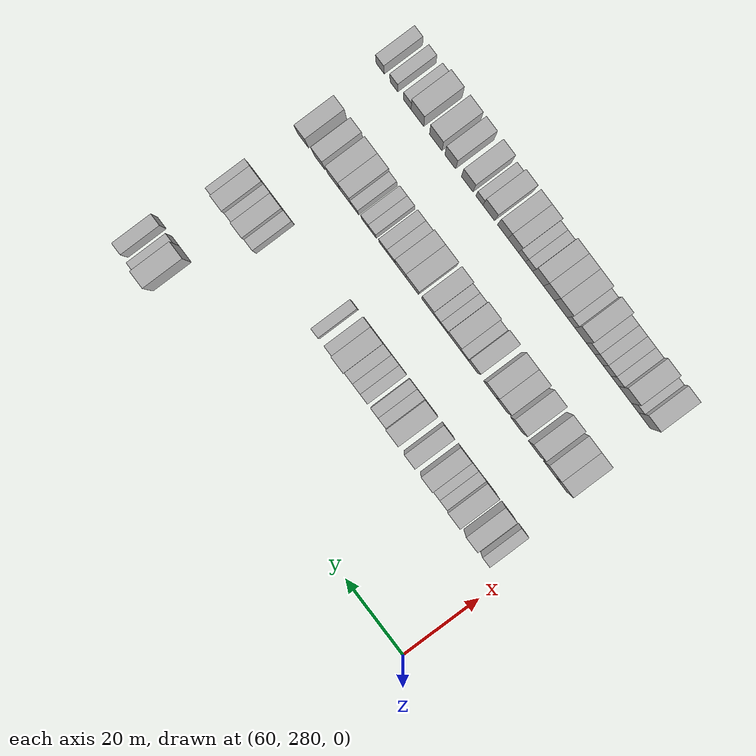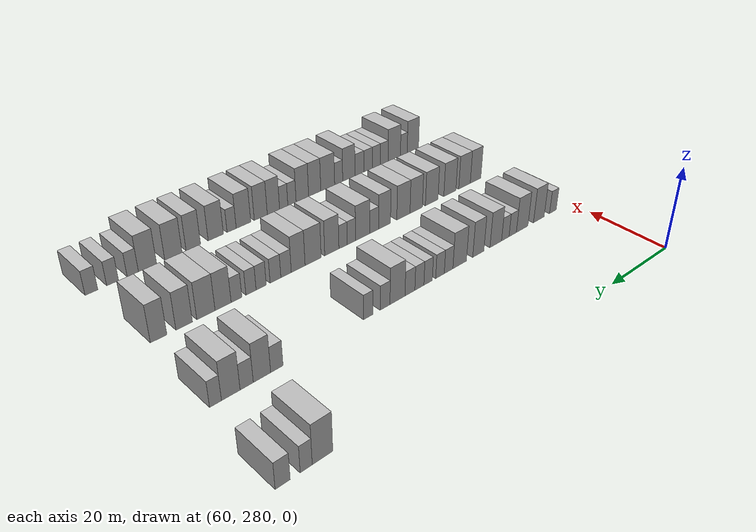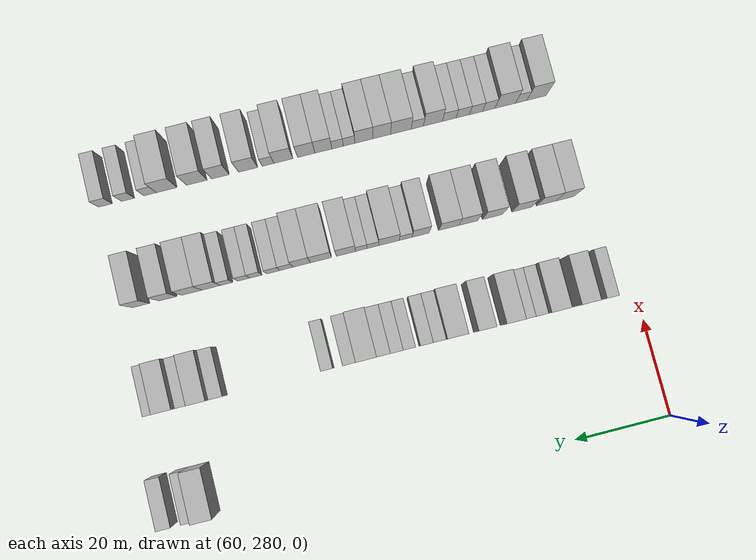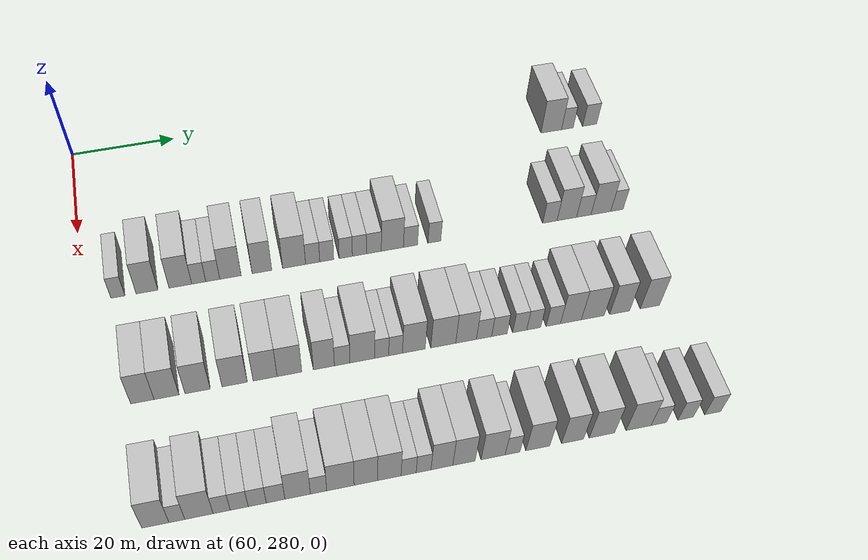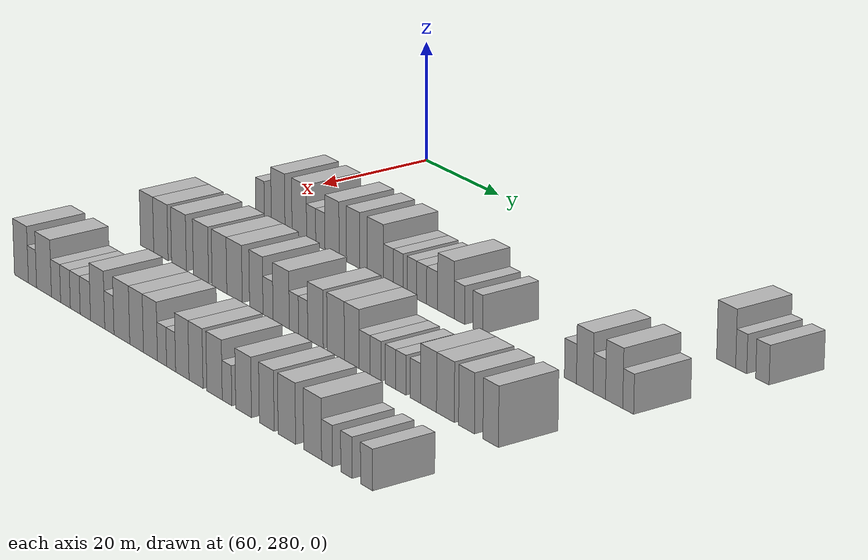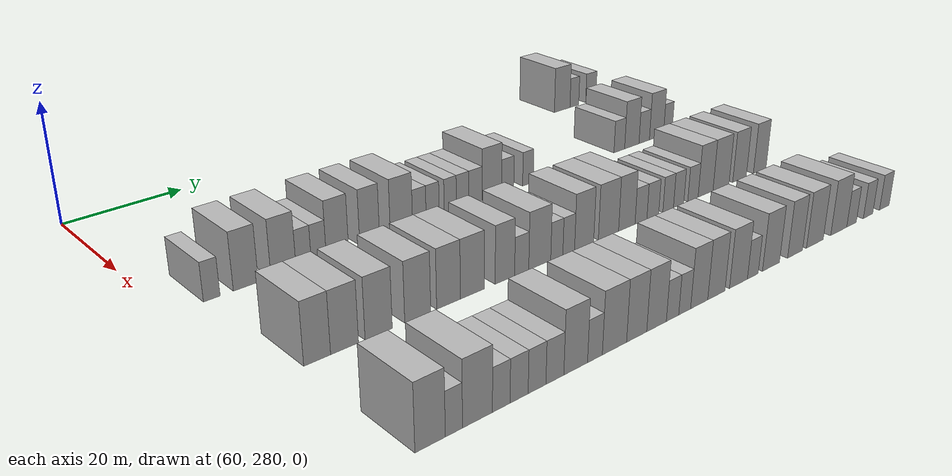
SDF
<sdf version="1.6">
 <world name="default">
  <model name="building_575">
   <static>1</static>
   <pose>69.0000 374.6277 0 0.000000 0.000000 0.000000</pose>
   <link name="link">
    <pose>0 0 4.50 0 0 0</pose>
    <collision name="collision"><geometry><box><size>10.0000 4.3175 9.0000</size></box></geometry></collision>
    <visual name="visual">
     <cast_shadows>0</cast_shadows>
     <geometry><box><size>10.0000 4.3175 9.0000</size></box></geometry>
     <material>
      <script>
       <uri>model://HANNAS_wall/materials/scripts</uri>
       <uri>model://HANNAS_wall/materials/textures</uri>
       <name>vrc/HANNAS_wall</name>
      </script>
     </material>
    </visual>
   </link>
  </model>
  <model name="building_576">
   <static>1</static>
   <pose>69.0000 378.0241 0 0.000000 0.000000 0.000000</pose>
   <link name="link">
    <pose>0 0 3.00 0 0 0</pose>
    <collision name="collision"><geometry><box><size>10.0000 2.4751 6.0000</size></box></geometry></collision>
    <visual name="visual">
     <cast_shadows>0</cast_shadows>
     <geometry><box><size>10.0000 2.4751 6.0000</size></box></geometry>
     <material>
      <script>
       <uri>model://HANNAS_wall/materials/scripts</uri>
       <uri>model://HANNAS_wall/materials/textures</uri>
       <name>vrc/HANNAS_wall</name>
      </script>
     </material>
    </visual>
   </link>
  </model>
  <model name="building_577">
   <static>1</static>
   <pose>69.0000 382.7484 0 0.000000 0.000000 0.000000</pose>
   <link name="link">
    <pose>0 0 3.00 0 0 0</pose>
    <collision name="collision"><geometry><box><size>10.0000 2.9735 6.0000</size></box></geometry></collision>
    <visual name="visual">
     <cast_shadows>0</cast_shadows>
     <geometry><box><size>10.0000 2.9735 6.0000</size></box></geometry>
     <material>
      <script>
       <uri>model://HANNAS_wall/materials/scripts</uri>
       <uri>model://HANNAS_wall/materials/textures</uri>
       <name>vrc/HANNAS_wall</name>
      </script>
     </material>
    </visual>
   </link>
  </model>
  <model name="building_746">
   <static>1</static>
   <pose>91.0000 286.3686 0 0.000000 0.000000 0.000000</pose>
   <link name="link">
    <pose>0 0 3.00 0 0 0</pose>
    <collision name="collision"><geometry><box><size>10.0000 2.4962 6.0000</size></box></geometry></collision>
    <visual name="visual">
     <cast_shadows>0</cast_shadows>
     <geometry><box><size>10.0000 2.4962 6.0000</size></box></geometry>
     <material>
      <script>
       <uri>model://HANNAS_wall/materials/scripts</uri>
       <uri>model://HANNAS_wall/materials/textures</uri>
       <name>vrc/HANNAS_wall</name>
      </script>
     </material>
    </visual>
   </link>
  </model>
  <model name="building_747">
   <static>1</static>
   <pose>91.0000 291.5607 0 0.000000 0.000000 0.000000</pose>
   <link name="link">
    <pose>0 0 4.50 0 0 0</pose>
    <collision name="collision"><geometry><box><size>10.0000 3.8879 9.0000</size></box></geometry></collision>
    <visual name="visual">
     <cast_shadows>0</cast_shadows>
     <geometry><box><size>10.0000 3.8879 9.0000</size></box></geometry>
     <material>
      <script>
       <uri>model://HANNAS_wall/materials/scripts</uri>
       <uri>model://HANNAS_wall/materials/textures</uri>
       <name>vrc/HANNAS_wall</name>
      </script>
     </material>
    </visual>
   </link>
  </model>
  <model name="building_748">
   <static>1</static>
   <pose>91.0000 297.5501 0 0.000000 0.000000 0.000000</pose>
   <link name="link">
    <pose>0 0 4.50 0 0 0</pose>
    <collision name="collision"><geometry><box><size>10.0000 4.0910 9.0000</size></box></geometry></collision>
    <visual name="visual">
     <cast_shadows>0</cast_shadows>
     <geometry><box><size>10.0000 4.0910 9.0000</size></box></geometry>
     <material>
      <script>
       <uri>model://HANNAS_wall/materials/scripts</uri>
       <uri>model://HANNAS_wall/materials/textures</uri>
       <name>vrc/HANNAS_wall</name>
      </script>
     </material>
    </visual>
   </link>
  </model>
  <model name="building_749">
   <static>1</static>
   <pose>91.0000 300.8704 0 0.000000 0.000000 0.000000</pose>
   <link name="link">
    <pose>0 0 3.00 0 0 0</pose>
    <collision name="collision"><geometry><box><size>10.0000 2.5496 6.0000</size></box></geometry></collision>
    <visual name="visual">
     <cast_shadows>0</cast_shadows>
     <geometry><box><size>10.0000 2.5496 6.0000</size></box></geometry>
     <material>
      <script>
       <uri>model://HANNAS_wall/materials/scripts</uri>
       <uri>model://HANNAS_wall/materials/textures</uri>
       <name>vrc/HANNAS_wall</name>
      </script>
     </material>
    </visual>
   </link>
  </model>
  <model name="building_750">
   <static>1</static>
   <pose>91.0000 303.4204 0 0.000000 0.000000 0.000000</pose>
   <link name="link">
    <pose>0 0 3.00 0 0 0</pose>
    <collision name="collision"><geometry><box><size>10.0000 2.5504 6.0000</size></box></geometry></collision>
    <visual name="visual">
     <cast_shadows>0</cast_shadows>
     <geometry><box><size>10.0000 2.5504 6.0000</size></box></geometry>
     <material>
      <script>
       <uri>model://HANNAS_wall/materials/scripts</uri>
       <uri>model://HANNAS_wall/materials/textures</uri>
       <name>vrc/HANNAS_wall</name>
      </script>
     </material>
    </visual>
   </link>
  </model>
  <model name="building_751">
   <static>1</static>
   <pose>91.0000 306.6442 0 0.000000 0.000000 0.000000</pose>
   <link name="link">
    <pose>0 0 4.50 0 0 0</pose>
    <collision name="collision"><geometry><box><size>10.0000 3.8972 9.0000</size></box></geometry></collision>
    <visual name="visual">
     <cast_shadows>0</cast_shadows>
     <geometry><box><size>10.0000 3.8972 9.0000</size></box></geometry>
     <material>
      <script>
       <uri>model://HANNAS_wall/materials/scripts</uri>
       <uri>model://HANNAS_wall/materials/textures</uri>
       <name>vrc/HANNAS_wall</name>
      </script>
     </material>
    </visual>
   </link>
  </model>
  <model name="building_752">
   <static>1</static>
   <pose>91.0000 312.3993 0 0.000000 0.000000 0.000000</pose>
   <link name="link">
    <pose>0 0 4.50 0 0 0</pose>
    <collision name="collision"><geometry><box><size>10.0000 3.6131 9.0000</size></box></geometry></collision>
    <visual name="visual">
     <cast_shadows>0</cast_shadows>
     <geometry><box><size>10.0000 3.6131 9.0000</size></box></geometry>
     <material>
      <script>
       <uri>model://HANNAS_wall/materials/scripts</uri>
       <uri>model://HANNAS_wall/materials/textures</uri>
       <name>vrc/HANNAS_wall</name>
      </script>
     </material>
    </visual>
   </link>
  </model>
  <model name="building_753">
   <static>1</static>
   <pose>91.0000 318.3314 0 0.000000 0.000000 0.000000</pose>
   <link name="link">
    <pose>0 0 4.50 0 0 0</pose>
    <collision name="collision"><geometry><box><size>10.0000 4.2511 9.0000</size></box></geometry></collision>
    <visual name="visual">
     <cast_shadows>0</cast_shadows>
     <geometry><box><size>10.0000 4.2511 9.0000</size></box></geometry>
     <material>
      <script>
       <uri>model://HANNAS_wall/materials/scripts</uri>
       <uri>model://HANNAS_wall/materials/textures</uri>
       <name>vrc/HANNAS_wall</name>
      </script>
     </material>
    </visual>
   </link>
  </model>
  <model name="building_754">
   <static>1</static>
   <pose>91.0000 321.7804 0 0.000000 0.000000 0.000000</pose>
   <link name="link">
    <pose>0 0 3.00 0 0 0</pose>
    <collision name="collision"><geometry><box><size>10.0000 2.6468 6.0000</size></box></geometry></collision>
    <visual name="visual">
     <cast_shadows>0</cast_shadows>
     <geometry><box><size>10.0000 2.6468 6.0000</size></box></geometry>
     <material>
      <script>
       <uri>model://HANNAS_wall/materials/scripts</uri>
       <uri>model://HANNAS_wall/materials/textures</uri>
       <name>vrc/HANNAS_wall</name>
      </script>
     </material>
    </visual>
   </link>
  </model>
  <model name="building_755">
   <static>1</static>
   <pose>91.0000 324.4025 0 0.000000 0.000000 0.000000</pose>
   <link name="link">
    <pose>0 0 3.00 0 0 0</pose>
    <collision name="collision"><geometry><box><size>10.0000 2.5975 6.0000</size></box></geometry></collision>
    <visual name="visual">
     <cast_shadows>0</cast_shadows>
     <geometry><box><size>10.0000 2.5975 6.0000</size></box></geometry>
     <material>
      <script>
       <uri>model://HANNAS_wall/materials/scripts</uri>
       <uri>model://HANNAS_wall/materials/textures</uri>
       <name>vrc/HANNAS_wall</name>
      </script>
     </material>
    </visual>
   </link>
  </model>
  <model name="building_756">
   <static>1</static>
   <pose>91.0000 327.9471 0 0.000000 0.000000 0.000000</pose>
   <link name="link">
    <pose>0 0 3.00 0 0 0</pose>
    <collision name="collision"><geometry><box><size>10.0000 2.4917 6.0000</size></box></geometry></collision>
    <visual name="visual">
     <cast_shadows>0</cast_shadows>
     <geometry><box><size>10.0000 2.4917 6.0000</size></box></geometry>
     <material>
      <script>
       <uri>model://HANNAS_wall/materials/scripts</uri>
       <uri>model://HANNAS_wall/materials/textures</uri>
       <name>vrc/HANNAS_wall</name>
      </script>
     </material>
    </visual>
   </link>
  </model>
  <model name="building_757">
   <static>1</static>
   <pose>91.0000 330.5033 0 0.000000 0.000000 0.000000</pose>
   <link name="link">
    <pose>0 0 3.00 0 0 0</pose>
    <collision name="collision"><geometry><box><size>10.0000 2.6206 6.0000</size></box></geometry></collision>
    <visual name="visual">
     <cast_shadows>0</cast_shadows>
     <geometry><box><size>10.0000 2.6206 6.0000</size></box></geometry>
     <material>
      <script>
       <uri>model://HANNAS_wall/materials/scripts</uri>
       <uri>model://HANNAS_wall/materials/textures</uri>
       <name>vrc/HANNAS_wall</name>
      </script>
     </material>
    </visual>
   </link>
  </model>
  <model name="building_758">
   <static>1</static>
   <pose>91.0000 333.2234 0 0.000000 0.000000 0.000000</pose>
   <link name="link">
    <pose>0 0 3.00 0 0 0</pose>
    <collision name="collision"><geometry><box><size>10.0000 2.8196 6.0000</size></box></geometry></collision>
    <visual name="visual">
     <cast_shadows>0</cast_shadows>
     <geometry><box><size>10.0000 2.8196 6.0000</size></box></geometry>
     <material>
      <script>
       <uri>model://HANNAS_wall/materials/scripts</uri>
       <uri>model://HANNAS_wall/materials/textures</uri>
       <name>vrc/HANNAS_wall</name>
      </script>
     </material>
    </visual>
   </link>
  </model>
  <model name="building_759">
   <static>1</static>
   <pose>91.0000 336.7365 0 0.000000 0.000000 0.000000</pose>
   <link name="link">
    <pose>0 0 4.50 0 0 0</pose>
    <collision name="collision"><geometry><box><size>10.0000 4.2067 9.0000</size></box></geometry></collision>
    <visual name="visual">
     <cast_shadows>0</cast_shadows>
     <geometry><box><size>10.0000 4.2067 9.0000</size></box></geometry>
     <material>
      <script>
       <uri>model://HANNAS_wall/materials/scripts</uri>
       <uri>model://HANNAS_wall/materials/textures</uri>
       <name>vrc/HANNAS_wall</name>
      </script>
     </material>
    </visual>
   </link>
  </model>
  <model name="building_760">
   <static>1</static>
   <pose>91.0000 340.1755 0 0.000000 0.000000 0.000000</pose>
   <link name="link">
    <pose>0 0 3.00 0 0 0</pose>
    <collision name="collision"><geometry><box><size>10.0000 2.6713 6.0000</size></box></geometry></collision>
    <visual name="visual">
     <cast_shadows>0</cast_shadows>
     <geometry><box><size>10.0000 2.6713 6.0000</size></box></geometry>
     <material>
      <script>
       <uri>model://HANNAS_wall/materials/scripts</uri>
       <uri>model://HANNAS_wall/materials/textures</uri>
       <name>vrc/HANNAS_wall</name>
      </script>
     </material>
    </visual>
   </link>
  </model>
  <model name="building_761">
   <static>1</static>
   <pose>91.0000 344.7371 0 0.000000 0.000000 0.000000</pose>
   <link name="link">
    <pose>0 0 3.00 0 0 0</pose>
    <collision name="collision"><geometry><box><size>10.0000 2.4519 6.0000</size></box></geometry></collision>
    <visual name="visual">
     <cast_shadows>0</cast_shadows>
     <geometry><box><size>10.0000 2.4519 6.0000</size></box></geometry>
     <material>
      <script>
       <uri>model://HANNAS_wall/materials/scripts</uri>
       <uri>model://HANNAS_wall/materials/textures</uri>
       <name>vrc/HANNAS_wall</name>
      </script>
     </material>
    </visual>
   </link>
  </model>
  <model name="building_762">
   <static>1</static>
   <pose>91.0000 367.1965 0 0.000000 0.000000 0.000000</pose>
   <link name="link">
    <pose>0 0 3.00 0 0 0</pose>
    <collision name="collision"><geometry><box><size>10.0000 2.8223 6.0000</size></box></geometry></collision>
    <visual name="visual">
     <cast_shadows>0</cast_shadows>
     <geometry><box><size>10.0000 2.8223 6.0000</size></box></geometry>
     <material>
      <script>
       <uri>model://HANNAS_wall/materials/scripts</uri>
       <uri>model://HANNAS_wall/materials/textures</uri>
       <name>vrc/HANNAS_wall</name>
      </script>
     </material>
    </visual>
   </link>
  </model>
  <model name="building_763">
   <static>1</static>
   <pose>91.0000 370.5399 0 0.000000 0.000000 0.000000</pose>
   <link name="link">
    <pose>0 0 4.50 0 0 0</pose>
    <collision name="collision"><geometry><box><size>10.0000 3.8645 9.0000</size></box></geometry></collision>
    <visual name="visual">
     <cast_shadows>0</cast_shadows>
     <geometry><box><size>10.0000 3.8645 9.0000</size></box></geometry>
     <material>
      <script>
       <uri>model://HANNAS_wall/materials/scripts</uri>
       <uri>model://HANNAS_wall/materials/textures</uri>
       <name>vrc/HANNAS_wall</name>
      </script>
     </material>
    </visual>
   </link>
  </model>
  <model name="building_764">
   <static>1</static>
   <pose>91.0000 373.9079 0 0.000000 0.000000 0.000000</pose>
   <link name="link">
    <pose>0 0 3.00 0 0 0</pose>
    <collision name="collision"><geometry><box><size>10.0000 2.8715 6.0000</size></box></geometry></collision>
    <visual name="visual">
     <cast_shadows>0</cast_shadows>
     <geometry><box><size>10.0000 2.8715 6.0000</size></box></geometry>
     <material>
      <script>
       <uri>model://HANNAS_wall/materials/scripts</uri>
       <uri>model://HANNAS_wall/materials/textures</uri>
       <name>vrc/HANNAS_wall</name>
      </script>
     </material>
    </visual>
   </link>
  </model>
  <model name="building_765">
   <static>1</static>
   <pose>91.0000 377.3191 0 0.000000 0.000000 0.000000</pose>
   <link name="link">
    <pose>0 0 4.50 0 0 0</pose>
    <collision name="collision"><geometry><box><size>10.0000 3.9510 9.0000</size></box></geometry></collision>
    <visual name="visual">
     <cast_shadows>0</cast_shadows>
     <geometry><box><size>10.0000 3.9510 9.0000</size></box></geometry>
     <material>
      <script>
       <uri>model://HANNAS_wall/materials/scripts</uri>
       <uri>model://HANNAS_wall/materials/textures</uri>
       <name>vrc/HANNAS_wall</name>
      </script>
     </material>
    </visual>
   </link>
  </model>
  <model name="building_766">
   <static>1</static>
   <pose>91.0000 380.5369 0 0.000000 0.000000 0.000000</pose>
   <link name="link">
    <pose>0 0 3.00 0 0 0</pose>
    <collision name="collision"><geometry><box><size>10.0000 2.4845 6.0000</size></box></geometry></collision>
    <visual name="visual">
     <cast_shadows>0</cast_shadows>
     <geometry><box><size>10.0000 2.4845 6.0000</size></box></geometry>
     <material>
      <script>
       <uri>model://HANNAS_wall/materials/scripts</uri>
       <uri>model://HANNAS_wall/materials/textures</uri>
       <name>vrc/HANNAS_wall</name>
      </script>
     </material>
    </visual>
   </link>
  </model>
  <model name="building_931">
   <static>1</static>
   <pose>113.0000 288.8568 0 0.000000 0.000000 0.000000</pose>
   <link name="link">
    <pose>0 0 4.50 0 0 0</pose>
    <collision name="collision"><geometry><box><size>10.0000 3.8878 9.0000</size></box></geometry></collision>
    <visual name="visual">
     <cast_shadows>0</cast_shadows>
     <geometry><box><size>10.0000 3.8878 9.0000</size></box></geometry>
     <material>
      <script>
       <uri>model://HANNAS_wall/materials/scripts</uri>
       <uri>model://HANNAS_wall/materials/textures</uri>
       <name>vrc/HANNAS_wall</name>
      </script>
     </material>
    </visual>
   </link>
  </model>
  <model name="building_932">
   <static>1</static>
   <pose>113.0000 292.8882 0 0.000000 0.000000 0.000000</pose>
   <link name="link">
    <pose>0 0 4.50 0 0 0</pose>
    <collision name="collision"><geometry><box><size>10.0000 4.1750 9.0000</size></box></geometry></collision>
    <visual name="visual">
     <cast_shadows>0</cast_shadows>
     <geometry><box><size>10.0000 4.1750 9.0000</size></box></geometry>
     <material>
      <script>
       <uri>model://HANNAS_wall/materials/scripts</uri>
       <uri>model://HANNAS_wall/materials/textures</uri>
       <name>vrc/HANNAS_wall</name>
      </script>
     </material>
    </visual>
   </link>
  </model>
  <model name="building_933">
   <static>1</static>
   <pose>113.0000 298.1080 0 0.000000 0.000000 0.000000</pose>
   <link name="link">
    <pose>0 0 4.50 0 0 0</pose>
    <collision name="collision"><geometry><box><size>10.0000 4.2646 9.0000</size></box></geometry></collision>
    <visual name="visual">
     <cast_shadows>0</cast_shadows>
     <geometry><box><size>10.0000 4.2646 9.0000</size></box></geometry>
     <material>
      <script>
       <uri>model://HANNAS_wall/materials/scripts</uri>
       <uri>model://HANNAS_wall/materials/textures</uri>
       <name>vrc/HANNAS_wall</name>
      </script>
     </material>
    </visual>
   </link>
  </model>
  <model name="building_934">
   <static>1</static>
   <pose>113.0000 304.3857 0 0.000000 0.000000 0.000000</pose>
   <link name="link">
    <pose>0 0 4.50 0 0 0</pose>
    <collision name="collision"><geometry><box><size>10.0000 4.2909 9.0000</size></box></geometry></collision>
    <visual name="visual">
     <cast_shadows>0</cast_shadows>
     <geometry><box><size>10.0000 4.2909 9.0000</size></box></geometry>
     <material>
      <script>
       <uri>model://HANNAS_wall/materials/scripts</uri>
       <uri>model://HANNAS_wall/materials/textures</uri>
       <name>vrc/HANNAS_wall</name>
      </script>
     </material>
    </visual>
   </link>
  </model>
  <model name="building_935">
   <static>1</static>
   <pose>113.0000 309.5827 0 0.000000 0.000000 0.000000</pose>
   <link name="link">
    <pose>0 0 4.50 0 0 0</pose>
    <collision name="collision"><geometry><box><size>10.0000 4.1031 9.0000</size></box></geometry></collision>
    <visual name="visual">
     <cast_shadows>0</cast_shadows>
     <geometry><box><size>10.0000 4.1031 9.0000</size></box></geometry>
     <material>
      <script>
       <uri>model://HANNAS_wall/materials/scripts</uri>
       <uri>model://HANNAS_wall/materials/textures</uri>
       <name>vrc/HANNAS_wall</name>
      </script>
     </material>
    </visual>
   </link>
  </model>
  <model name="building_936">
   <static>1</static>
   <pose>113.0000 313.7632 0 0.000000 0.000000 0.000000</pose>
   <link name="link">
    <pose>0 0 4.50 0 0 0</pose>
    <collision name="collision"><geometry><box><size>10.0000 4.2581 9.0000</size></box></geometry></collision>
    <visual name="visual">
     <cast_shadows>0</cast_shadows>
     <geometry><box><size>10.0000 4.2581 9.0000</size></box></geometry>
     <material>
      <script>
       <uri>model://HANNAS_wall/materials/scripts</uri>
       <uri>model://HANNAS_wall/materials/textures</uri>
       <name>vrc/HANNAS_wall</name>
      </script>
     </material>
    </visual>
   </link>
  </model>
  <model name="building_937">
   <static>1</static>
   <pose>113.0000 319.7198 0 0.000000 0.000000 0.000000</pose>
   <link name="link">
    <pose>0 0 4.50 0 0 0</pose>
    <collision name="collision"><geometry><box><size>10.0000 3.6551 9.0000</size></box></geometry></collision>
    <visual name="visual">
     <cast_shadows>0</cast_shadows>
     <geometry><box><size>10.0000 3.6551 9.0000</size></box></geometry>
     <material>
      <script>
       <uri>model://HANNAS_wall/materials/scripts</uri>
       <uri>model://HANNAS_wall/materials/textures</uri>
       <name>vrc/HANNAS_wall</name>
      </script>
     </material>
    </visual>
   </link>
  </model>
  <model name="building_938">
   <static>1</static>
   <pose>113.0000 322.9020 0 0.000000 0.000000 0.000000</pose>
   <link name="link">
    <pose>0 0 3.00 0 0 0</pose>
    <collision name="collision"><geometry><box><size>10.0000 2.7092 6.0000</size></box></geometry></collision>
    <visual name="visual">
     <cast_shadows>0</cast_shadows>
     <geometry><box><size>10.0000 2.7092 6.0000</size></box></geometry>
     <material>
      <script>
       <uri>model://HANNAS_wall/materials/scripts</uri>
       <uri>model://HANNAS_wall/materials/textures</uri>
       <name>vrc/HANNAS_wall</name>
      </script>
     </material>
    </visual>
   </link>
  </model>
  <model name="building_939">
   <static>1</static>
   <pose>113.0000 326.4269 0 0.000000 0.000000 0.000000</pose>
   <link name="link">
    <pose>0 0 4.50 0 0 0</pose>
    <collision name="collision"><geometry><box><size>10.0000 4.3405 9.0000</size></box></geometry></collision>
    <visual name="visual">
     <cast_shadows>0</cast_shadows>
     <geometry><box><size>10.0000 4.3405 9.0000</size></box></geometry>
     <material>
      <script>
       <uri>model://HANNAS_wall/materials/scripts</uri>
       <uri>model://HANNAS_wall/materials/textures</uri>
       <name>vrc/HANNAS_wall</name>
      </script>
     </material>
    </visual>
   </link>
  </model>
  <model name="building_940">
   <static>1</static>
   <pose>113.0000 329.8248 0 0.000000 0.000000 0.000000</pose>
   <link name="link">
    <pose>0 0 3.00 0 0 0</pose>
    <collision name="collision"><geometry><box><size>10.0000 2.4552 6.0000</size></box></geometry></collision>
    <visual name="visual">
     <cast_shadows>0</cast_shadows>
     <geometry><box><size>10.0000 2.4552 6.0000</size></box></geometry>
     <material>
      <script>
       <uri>model://HANNAS_wall/materials/scripts</uri>
       <uri>model://HANNAS_wall/materials/textures</uri>
       <name>vrc/HANNAS_wall</name>
      </script>
     </material>
    </visual>
   </link>
  </model>
  <model name="building_941">
   <static>1</static>
   <pose>113.0000 332.2641 0 0.000000 0.000000 0.000000</pose>
   <link name="link">
    <pose>0 0 3.00 0 0 0</pose>
    <collision name="collision"><geometry><box><size>10.0000 2.4234 6.0000</size></box></geometry></collision>
    <visual name="visual">
     <cast_shadows>0</cast_shadows>
     <geometry><box><size>10.0000 2.4234 6.0000</size></box></geometry>
     <material>
      <script>
       <uri>model://HANNAS_wall/materials/scripts</uri>
       <uri>model://HANNAS_wall/materials/textures</uri>
       <name>vrc/HANNAS_wall</name>
      </script>
     </material>
    </visual>
   </link>
  </model>
  <model name="building_942">
   <static>1</static>
   <pose>113.0000 335.4983 0 0.000000 0.000000 0.000000</pose>
   <link name="link">
    <pose>0 0 4.50 0 0 0</pose>
    <collision name="collision"><geometry><box><size>10.0000 4.0451 9.0000</size></box></geometry></collision>
    <visual name="visual">
     <cast_shadows>0</cast_shadows>
     <geometry><box><size>10.0000 4.0451 9.0000</size></box></geometry>
     <material>
      <script>
       <uri>model://HANNAS_wall/materials/scripts</uri>
       <uri>model://HANNAS_wall/materials/textures</uri>
       <name>vrc/HANNAS_wall</name>
      </script>
     </material>
    </visual>
   </link>
  </model>
  <model name="building_943">
   <static>1</static>
   <pose>113.0000 340.7490 0 0.000000 0.000000 0.000000</pose>
   <link name="link">
    <pose>0 0 4.50 0 0 0</pose>
    <collision name="collision"><geometry><box><size>10.0000 4.4563 9.0000</size></box></geometry></collision>
    <visual name="visual">
     <cast_shadows>0</cast_shadows>
     <geometry><box><size>10.0000 4.4563 9.0000</size></box></geometry>
     <material>
      <script>
       <uri>model://HANNAS_wall/materials/scripts</uri>
       <uri>model://HANNAS_wall/materials/textures</uri>
       <name>vrc/HANNAS_wall</name>
      </script>
     </material>
    </visual>
   </link>
  </model>
  <model name="building_944">
   <static>1</static>
   <pose>113.0000 344.8410 0 0.000000 0.000000 0.000000</pose>
   <link name="link">
    <pose>0 0 4.50 0 0 0</pose>
    <collision name="collision"><geometry><box><size>10.0000 3.7277 9.0000</size></box></geometry></collision>
    <visual name="visual">
     <cast_shadows>0</cast_shadows>
     <geometry><box><size>10.0000 3.7277 9.0000</size></box></geometry>
     <material>
      <script>
       <uri>model://HANNAS_wall/materials/scripts</uri>
       <uri>model://HANNAS_wall/materials/textures</uri>
       <name>vrc/HANNAS_wall</name>
      </script>
     </material>
    </visual>
   </link>
  </model>
  <model name="building_945">
   <static>1</static>
   <pose>113.0000 348.0830 0 0.000000 0.000000 0.000000</pose>
   <link name="link">
    <pose>0 0 3.00 0 0 0</pose>
    <collision name="collision"><geometry><box><size>10.0000 2.7561 6.0000</size></box></geometry></collision>
    <visual name="visual">
     <cast_shadows>0</cast_shadows>
     <geometry><box><size>10.0000 2.7561 6.0000</size></box></geometry>
     <material>
      <script>
       <uri>model://HANNAS_wall/materials/scripts</uri>
       <uri>model://HANNAS_wall/materials/textures</uri>
       <name>vrc/HANNAS_wall</name>
      </script>
     </material>
    </visual>
   </link>
  </model>
  <model name="building_946">
   <static>1</static>
   <pose>113.0000 350.8600 0 0.000000 0.000000 0.000000</pose>
   <link name="link">
    <pose>0 0 3.00 0 0 0</pose>
    <collision name="collision"><geometry><box><size>10.0000 2.7979 6.0000</size></box></geometry></collision>
    <visual name="visual">
     <cast_shadows>0</cast_shadows>
     <geometry><box><size>10.0000 2.7979 6.0000</size></box></geometry>
     <material>
      <script>
       <uri>model://HANNAS_wall/materials/scripts</uri>
       <uri>model://HANNAS_wall/materials/textures</uri>
       <name>vrc/HANNAS_wall</name>
      </script>
     </material>
    </visual>
   </link>
  </model>
  <model name="building_947">
   <static>1</static>
   <pose>113.0000 354.5450 0 0.000000 0.000000 0.000000</pose>
   <link name="link">
    <pose>0 0 3.00 0 0 0</pose>
    <collision name="collision"><geometry><box><size>10.0000 2.5722 6.0000</size></box></geometry></collision>
    <visual name="visual">
     <cast_shadows>0</cast_shadows>
     <geometry><box><size>10.0000 2.5722 6.0000</size></box></geometry>
     <material>
      <script>
       <uri>model://HANNAS_wall/materials/scripts</uri>
       <uri>model://HANNAS_wall/materials/textures</uri>
       <name>vrc/HANNAS_wall</name>
      </script>
     </material>
    </visual>
   </link>
  </model>
  <model name="building_948">
   <static>1</static>
   <pose>113.0000 357.1056 0 0.000000 0.000000 0.000000</pose>
   <link name="link">
    <pose>0 0 3.00 0 0 0</pose>
    <collision name="collision"><geometry><box><size>10.0000 2.5491 6.0000</size></box></geometry></collision>
    <visual name="visual">
     <cast_shadows>0</cast_shadows>
     <geometry><box><size>10.0000 2.5491 6.0000</size></box></geometry>
     <material>
      <script>
       <uri>model://HANNAS_wall/materials/scripts</uri>
       <uri>model://HANNAS_wall/materials/textures</uri>
       <name>vrc/HANNAS_wall</name>
      </script>
     </material>
    </visual>
   </link>
  </model>
  <model name="building_949">
   <static>1</static>
   <pose>113.0000 360.6949 0 0.000000 0.000000 0.000000</pose>
   <link name="link">
    <pose>0 0 3.00 0 0 0</pose>
    <collision name="collision"><geometry><box><size>10.0000 2.6295 6.0000</size></box></geometry></collision>
    <visual name="visual">
     <cast_shadows>0</cast_shadows>
     <geometry><box><size>10.0000 2.6295 6.0000</size></box></geometry>
     <material>
      <script>
       <uri>model://HANNAS_wall/materials/scripts</uri>
       <uri>model://HANNAS_wall/materials/textures</uri>
       <name>vrc/HANNAS_wall</name>
      </script>
     </material>
    </visual>
   </link>
  </model>
  <model name="building_950">
   <static>1</static>
   <pose>113.0000 363.9368 0 0.000000 0.000000 0.000000</pose>
   <link name="link">
    <pose>0 0 4.50 0 0 0</pose>
    <collision name="collision"><geometry><box><size>10.0000 3.8544 9.0000</size></box></geometry></collision>
    <visual name="visual">
     <cast_shadows>0</cast_shadows>
     <geometry><box><size>10.0000 3.8544 9.0000</size></box></geometry>
     <material>
      <script>
       <uri>model://HANNAS_wall/materials/scripts</uri>
       <uri>model://HANNAS_wall/materials/textures</uri>
       <name>vrc/HANNAS_wall</name>
      </script>
     </material>
    </visual>
   </link>
  </model>
  <model name="building_951">
   <static>1</static>
   <pose>113.0000 367.9996 0 0.000000 0.000000 0.000000</pose>
   <link name="link">
    <pose>0 0 4.50 0 0 0</pose>
    <collision name="collision"><geometry><box><size>10.0000 4.2711 9.0000</size></box></geometry></collision>
    <visual name="visual">
     <cast_shadows>0</cast_shadows>
     <geometry><box><size>10.0000 4.2711 9.0000</size></box></geometry>
     <material>
      <script>
       <uri>model://HANNAS_wall/materials/scripts</uri>
       <uri>model://HANNAS_wall/materials/textures</uri>
       <name>vrc/HANNAS_wall</name>
      </script>
     </material>
    </visual>
   </link>
  </model>
  <model name="building_952">
   <static>1</static>
   <pose>113.0000 373.0039 0 0.000000 0.000000 0.000000</pose>
   <link name="link">
    <pose>0 0 4.50 0 0 0</pose>
    <collision name="collision"><geometry><box><size>10.0000 3.7374 9.0000</size></box></geometry></collision>
    <visual name="visual">
     <cast_shadows>0</cast_shadows>
     <geometry><box><size>10.0000 3.7374 9.0000</size></box></geometry>
     <material>
      <script>
       <uri>model://HANNAS_wall/materials/scripts</uri>
       <uri>model://HANNAS_wall/materials/textures</uri>
       <name>vrc/HANNAS_wall</name>
      </script>
     </material>
    </visual>
   </link>
  </model>
  <model name="building_953">
   <static>1</static>
   <pose>113.0000 378.6743 0 0.000000 0.000000 0.000000</pose>
   <link name="link">
    <pose>0 0 4.50 0 0 0</pose>
    <collision name="collision"><geometry><box><size>10.0000 3.6034 9.0000</size></box></geometry></collision>
    <visual name="visual">
     <cast_shadows>0</cast_shadows>
     <geometry><box><size>10.0000 3.6034 9.0000</size></box></geometry>
     <material>
      <script>
       <uri>model://HANNAS_wall/materials/scripts</uri>
       <uri>model://HANNAS_wall/materials/textures</uri>
       <name>vrc/HANNAS_wall</name>
      </script>
     </material>
    </visual>
   </link>
  </model>
  <model name="building_1127">
   <static>1</static>
   <pose>135.0000 288.9985 0 0.000000 0.000000 0.000000</pose>
   <link name="link">
    <pose>0 0 4.50 0 0 0</pose>
    <collision name="collision"><geometry><box><size>10.0000 4.2005 9.0000</size></box></geometry></collision>
    <visual name="visual">
     <cast_shadows>0</cast_shadows>
     <geometry><box><size>10.0000 4.2005 9.0000</size></box></geometry>
     <material>
      <script>
       <uri>model://HANNAS_wall/materials/scripts</uri>
       <uri>model://HANNAS_wall/materials/textures</uri>
       <name>vrc/HANNAS_wall</name>
      </script>
     </material>
    </visual>
   </link>
  </model>
  <model name="building_1128">
   <static>1</static>
   <pose>135.0000 292.3242 0 0.000000 0.000000 0.000000</pose>
   <link name="link">
    <pose>0 0 3.00 0 0 0</pose>
    <collision name="collision"><geometry><box><size>10.0000 2.4510 6.0000</size></box></geometry></collision>
    <visual name="visual">
     <cast_shadows>0</cast_shadows>
     <geometry><box><size>10.0000 2.4510 6.0000</size></box></geometry>
     <material>
      <script>
       <uri>model://HANNAS_wall/materials/scripts</uri>
       <uri>model://HANNAS_wall/materials/textures</uri>
       <name>vrc/HANNAS_wall</name>
      </script>
     </material>
    </visual>
   </link>
  </model>
  <model name="building_1129">
   <static>1</static>
   <pose>135.0000 295.7596 0 0.000000 0.000000 0.000000</pose>
   <link name="link">
    <pose>0 0 4.50 0 0 0</pose>
    <collision name="collision"><geometry><box><size>10.0000 4.4198 9.0000</size></box></geometry></collision>
    <visual name="visual">
     <cast_shadows>0</cast_shadows>
     <geometry><box><size>10.0000 4.4198 9.0000</size></box></geometry>
     <material>
      <script>
       <uri>model://HANNAS_wall/materials/scripts</uri>
       <uri>model://HANNAS_wall/materials/textures</uri>
       <name>vrc/HANNAS_wall</name>
      </script>
     </material>
    </visual>
   </link>
  </model>
  <model name="building_1130">
   <static>1</static>
   <pose>135.0000 299.3175 0 0.000000 0.000000 0.000000</pose>
   <link name="link">
    <pose>0 0 3.00 0 0 0</pose>
    <collision name="collision"><geometry><box><size>10.0000 2.6960 6.0000</size></box></geometry></collision>
    <visual name="visual">
     <cast_shadows>0</cast_shadows>
     <geometry><box><size>10.0000 2.6960 6.0000</size></box></geometry>
     <material>
      <script>
       <uri>model://HANNAS_wall/materials/scripts</uri>
       <uri>model://HANNAS_wall/materials/textures</uri>
       <name>vrc/HANNAS_wall</name>
      </script>
     </material>
    </visual>
   </link>
  </model>
  <model name="building_1131">
   <static>1</static>
   <pose>135.0000 302.0847 0 0.000000 0.000000 0.000000</pose>
   <link name="link">
    <pose>0 0 3.00 0 0 0</pose>
    <collision name="collision"><geometry><box><size>10.0000 2.8384 6.0000</size></box></geometry></collision>
    <visual name="visual">
     <cast_shadows>0</cast_shadows>
     <geometry><box><size>10.0000 2.8384 6.0000</size></box></geometry>
     <material>
      <script>
       <uri>model://HANNAS_wall/materials/scripts</uri>
       <uri>model://HANNAS_wall/materials/textures</uri>
       <name>vrc/HANNAS_wall</name>
      </script>
     </material>
    </visual>
   </link>
  </model>
  <model name="building_1132">
   <static>1</static>
   <pose>135.0000 304.9349 0 0.000000 0.000000 0.000000</pose>
   <link name="link">
    <pose>0 0 3.00 0 0 0</pose>
    <collision name="collision"><geometry><box><size>10.0000 2.8621 6.0000</size></box></geometry></collision>
    <visual name="visual">
     <cast_shadows>0</cast_shadows>
     <geometry><box><size>10.0000 2.8621 6.0000</size></box></geometry>
     <material>
      <script>
       <uri>model://HANNAS_wall/materials/scripts</uri>
       <uri>model://HANNAS_wall/materials/textures</uri>
       <name>vrc/HANNAS_wall</name>
      </script>
     </material>
    </visual>
   </link>
  </model>
  <model name="building_1133">
   <static>1</static>
   <pose>135.0000 307.8536 0 0.000000 0.000000 0.000000</pose>
   <link name="link">
    <pose>0 0 3.00 0 0 0</pose>
    <collision name="collision"><geometry><box><size>10.0000 2.9753 6.0000</size></box></geometry></collision>
    <visual name="visual">
     <cast_shadows>0</cast_shadows>
     <geometry><box><size>10.0000 2.9753 6.0000</size></box></geometry>
     <material>
      <script>
       <uri>model://HANNAS_wall/materials/scripts</uri>
       <uri>model://HANNAS_wall/materials/textures</uri>
       <name>vrc/HANNAS_wall</name>
      </script>
     </material>
    </visual>
   </link>
  </model>
  <model name="building_1134">
   <static>1</static>
   <pose>135.0000 311.3721 0 0.000000 0.000000 0.000000</pose>
   <link name="link">
    <pose>0 0 4.50 0 0 0</pose>
    <collision name="collision"><geometry><box><size>10.0000 4.0618 9.0000</size></box></geometry></collision>
    <visual name="visual">
     <cast_shadows>0</cast_shadows>
     <geometry><box><size>10.0000 4.0618 9.0000</size></box></geometry>
     <material>
      <script>
       <uri>model://HANNAS_wall/materials/scripts</uri>
       <uri>model://HANNAS_wall/materials/textures</uri>
       <name>vrc/HANNAS_wall</name>
      </script>
     </material>
    </visual>
   </link>
  </model>
  <model name="building_1135">
   <static>1</static>
   <pose>135.0000 314.7089 0 0.000000 0.000000 0.000000</pose>
   <link name="link">
    <pose>0 0 3.00 0 0 0</pose>
    <collision name="collision"><geometry><box><size>10.0000 2.6117 6.0000</size></box></geometry></collision>
    <visual name="visual">
     <cast_shadows>0</cast_shadows>
     <geometry><box><size>10.0000 2.6117 6.0000</size></box></geometry>
     <material>
      <script>
       <uri>model://HANNAS_wall/materials/scripts</uri>
       <uri>model://HANNAS_wall/materials/textures</uri>
       <name>vrc/HANNAS_wall</name>
      </script>
     </material>
    </visual>
   </link>
  </model>
  <model name="building_1136">
   <static>1</static>
   <pose>135.0000 318.2271 0 0.000000 0.000000 0.000000</pose>
   <link name="link">
    <pose>0 0 4.50 0 0 0</pose>
    <collision name="collision"><geometry><box><size>10.0000 4.4248 9.0000</size></box></geometry></collision>
    <visual name="visual">
     <cast_shadows>0</cast_shadows>
     <geometry><box><size>10.0000 4.4248 9.0000</size></box></geometry>
     <material>
      <script>
       <uri>model://HANNAS_wall/materials/scripts</uri>
       <uri>model://HANNAS_wall/materials/textures</uri>
       <name>vrc/HANNAS_wall</name>
      </script>
     </material>
    </visual>
   </link>
  </model>
  <model name="building_1137">
   <static>1</static>
   <pose>135.0000 322.3420 0 0.000000 0.000000 0.000000</pose>
   <link name="link">
    <pose>0 0 4.50 0 0 0</pose>
    <collision name="collision"><geometry><box><size>10.0000 3.8050 9.0000</size></box></geometry></collision>
    <visual name="visual">
     <cast_shadows>0</cast_shadows>
     <geometry><box><size>10.0000 3.8050 9.0000</size></box></geometry>
     <material>
      <script>
       <uri>model://HANNAS_wall/materials/scripts</uri>
       <uri>model://HANNAS_wall/materials/textures</uri>
       <name>vrc/HANNAS_wall</name>
      </script>
     </material>
    </visual>
   </link>
  </model>
  <model name="building_1138">
   <static>1</static>
   <pose>135.0000 326.1632 0 0.000000 0.000000 0.000000</pose>
   <link name="link">
    <pose>0 0 4.50 0 0 0</pose>
    <collision name="collision"><geometry><box><size>10.0000 3.8374 9.0000</size></box></geometry></collision>
    <visual name="visual">
     <cast_shadows>0</cast_shadows>
     <geometry><box><size>10.0000 3.8374 9.0000</size></box></geometry>
     <material>
      <script>
       <uri>model://HANNAS_wall/materials/scripts</uri>
       <uri>model://HANNAS_wall/materials/textures</uri>
       <name>vrc/HANNAS_wall</name>
      </script>
     </material>
    </visual>
   </link>
  </model>
  <model name="building_1139">
   <static>1</static>
   <pose>135.0000 329.3245 0 0.000000 0.000000 0.000000</pose>
   <link name="link">
    <pose>0 0 3.00 0 0 0</pose>
    <collision name="collision"><geometry><box><size>10.0000 2.4853 6.0000</size></box></geometry></collision>
    <visual name="visual">
     <cast_shadows>0</cast_shadows>
     <geometry><box><size>10.0000 2.4853 6.0000</size></box></geometry>
     <material>
      <script>
       <uri>model://HANNAS_wall/materials/scripts</uri>
       <uri>model://HANNAS_wall/materials/textures</uri>
       <name>vrc/HANNAS_wall</name>
      </script>
     </material>
    </visual>
   </link>
  </model>
  <model name="building_1140">
   <static>1</static>
   <pose>135.0000 331.7882 0 0.000000 0.000000 0.000000</pose>
   <link name="link">
    <pose>0 0 3.00 0 0 0</pose>
    <collision name="collision"><geometry><box><size>10.0000 2.4420 6.0000</size></box></geometry></collision>
    <visual name="visual">
     <cast_shadows>0</cast_shadows>
     <geometry><box><size>10.0000 2.4420 6.0000</size></box></geometry>
     <material>
      <script>
       <uri>model://HANNAS_wall/materials/scripts</uri>
       <uri>model://HANNAS_wall/materials/textures</uri>
       <name>vrc/HANNAS_wall</name>
      </script>
     </material>
    </visual>
   </link>
  </model>
  <model name="building_1141">
   <static>1</static>
   <pose>135.0000 334.8094 0 0.000000 0.000000 0.000000</pose>
   <link name="link">
    <pose>0 0 4.50 0 0 0</pose>
    <collision name="collision"><geometry><box><size>10.0000 3.6004 9.0000</size></box></geometry></collision>
    <visual name="visual">
     <cast_shadows>0</cast_shadows>
     <geometry><box><size>10.0000 3.6004 9.0000</size></box></geometry>
     <material>
      <script>
       <uri>model://HANNAS_wall/materials/scripts</uri>
       <uri>model://HANNAS_wall/materials/textures</uri>
       <name>vrc/HANNAS_wall</name>
      </script>
     </material>
    </visual>
   </link>
  </model>
  <model name="building_1142">
   <static>1</static>
   <pose>135.0000 338.4727 0 0.000000 0.000000 0.000000</pose>
   <link name="link">
    <pose>0 0 4.50 0 0 0</pose>
    <collision name="collision"><geometry><box><size>10.0000 3.7263 9.0000</size></box></geometry></collision>
    <visual name="visual">
     <cast_shadows>0</cast_shadows>
     <geometry><box><size>10.0000 3.7263 9.0000</size></box></geometry>
     <material>
      <script>
       <uri>model://HANNAS_wall/materials/scripts</uri>
       <uri>model://HANNAS_wall/materials/textures</uri>
       <name>vrc/HANNAS_wall</name>
      </script>
     </material>
    </visual>
   </link>
  </model>
  <model name="building_1143">
   <static>1</static>
   <pose>135.0000 343.3565 0 0.000000 0.000000 0.000000</pose>
   <link name="link">
    <pose>0 0 4.50 0 0 0</pose>
    <collision name="collision"><geometry><box><size>10.0000 4.0412 9.0000</size></box></geometry></collision>
    <visual name="visual">
     <cast_shadows>0</cast_shadows>
     <geometry><box><size>10.0000 4.0412 9.0000</size></box></geometry>
     <material>
      <script>
       <uri>model://HANNAS_wall/materials/scripts</uri>
       <uri>model://HANNAS_wall/materials/textures</uri>
       <name>vrc/HANNAS_wall</name>
      </script>
     </material>
    </visual>
   </link>
  </model>
  <model name="building_1144">
   <static>1</static>
   <pose>135.0000 346.6246 0 0.000000 0.000000 0.000000</pose>
   <link name="link">
    <pose>0 0 3.00 0 0 0</pose>
    <collision name="collision"><geometry><box><size>10.0000 2.4950 6.0000</size></box></geometry></collision>
    <visual name="visual">
     <cast_shadows>0</cast_shadows>
     <geometry><box><size>10.0000 2.4950 6.0000</size></box></geometry>
     <material>
      <script>
       <uri>model://HANNAS_wall/materials/scripts</uri>
       <uri>model://HANNAS_wall/materials/textures</uri>
       <name>vrc/HANNAS_wall</name>
      </script>
     </material>
    </visual>
   </link>
  </model>
  <model name="building_1145">
   <static>1</static>
   <pose>135.0000 350.9018 0 0.000000 0.000000 0.000000</pose>
   <link name="link">
    <pose>0 0 4.50 0 0 0</pose>
    <collision name="collision"><geometry><box><size>10.0000 4.0593 9.0000</size></box></geometry></collision>
    <visual name="visual">
     <cast_shadows>0</cast_shadows>
     <geometry><box><size>10.0000 4.0593 9.0000</size></box></geometry>
     <material>
      <script>
       <uri>model://HANNAS_wall/materials/scripts</uri>
       <uri>model://HANNAS_wall/materials/textures</uri>
       <name>vrc/HANNAS_wall</name>
      </script>
     </material>
    </visual>
   </link>
  </model>
  <model name="building_1146">
   <static>1</static>
   <pose>135.0000 356.8043 0 0.000000 0.000000 0.000000</pose>
   <link name="link">
    <pose>0 0 4.50 0 0 0</pose>
    <collision name="collision"><geometry><box><size>10.0000 3.7457 9.0000</size></box></geometry></collision>
    <visual name="visual">
     <cast_shadows>0</cast_shadows>
     <geometry><box><size>10.0000 3.7457 9.0000</size></box></geometry>
     <material>
      <script>
       <uri>model://HANNAS_wall/materials/scripts</uri>
       <uri>model://HANNAS_wall/materials/textures</uri>
       <name>vrc/HANNAS_wall</name>
      </script>
     </material>
    </visual>
   </link>
  </model>
  <model name="building_1147">
   <static>1</static>
   <pose>135.0000 361.8536 0 0.000000 0.000000 0.000000</pose>
   <link name="link">
    <pose>0 0 4.50 0 0 0</pose>
    <collision name="collision"><geometry><box><size>10.0000 4.3529 9.0000</size></box></geometry></collision>
    <visual name="visual">
     <cast_shadows>0</cast_shadows>
     <geometry><box><size>10.0000 4.3529 9.0000</size></box></geometry>
     <material>
      <script>
       <uri>model://HANNAS_wall/materials/scripts</uri>
       <uri>model://HANNAS_wall/materials/textures</uri>
       <name>vrc/HANNAS_wall</name>
      </script>
     </material>
    </visual>
   </link>
  </model>
  <model name="building_1148">
   <static>1</static>
   <pose>135.0000 368.2185 0 0.000000 0.000000 0.000000</pose>
   <link name="link">
    <pose>0 0 4.50 0 0 0</pose>
    <collision name="collision"><geometry><box><size>10.0000 4.3769 9.0000</size></box></geometry></collision>
    <visual name="visual">
     <cast_shadows>0</cast_shadows>
     <geometry><box><size>10.0000 4.3769 9.0000</size></box></geometry>
     <material>
      <script>
       <uri>model://HANNAS_wall/materials/scripts</uri>
       <uri>model://HANNAS_wall/materials/textures</uri>
       <name>vrc/HANNAS_wall</name>
      </script>
     </material>
    </visual>
   </link>
  </model>
  <model name="building_1149">
   <static>1</static>
   <pose>135.0000 371.7373 0 0.000000 0.000000 0.000000</pose>
   <link name="link">
    <pose>0 0 3.00 0 0 0</pose>
    <collision name="collision"><geometry><box><size>10.0000 2.6606 6.0000</size></box></geometry></collision>
    <visual name="visual">
     <cast_shadows>0</cast_shadows>
     <geometry><box><size>10.0000 2.6606 6.0000</size></box></geometry>
     <material>
      <script>
       <uri>model://HANNAS_wall/materials/scripts</uri>
       <uri>model://HANNAS_wall/materials/textures</uri>
       <name>vrc/HANNAS_wall</name>
      </script>
     </material>
    </visual>
   </link>
  </model>
  <model name="building_1150">
   <static>1</static>
   <pose>135.0000 376.4274 0 0.000000 0.000000 0.000000</pose>
   <link name="link">
    <pose>0 0 3.00 0 0 0</pose>
    <collision name="collision"><geometry><box><size>10.0000 2.7197 6.0000</size></box></geometry></collision>
    <visual name="visual">
     <cast_shadows>0</cast_shadows>
     <geometry><box><size>10.0000 2.7197 6.0000</size></box></geometry>
     <material>
      <script>
       <uri>model://HANNAS_wall/materials/scripts</uri>
       <uri>model://HANNAS_wall/materials/textures</uri>
       <name>vrc/HANNAS_wall</name>
      </script>
     </material>
    </visual>
   </link>
  </model>
  <model name="building_1151">
   <static>1</static>
   <pose>135.0000 381.2138 0 0.000000 0.000000 0.000000</pose>
   <link name="link">
    <pose>0 0 3.00 0 0 0</pose>
    <collision name="collision"><geometry><box><size>10.0000 2.8531 6.0000</size></box></geometry></collision>
    <visual name="visual">
     <cast_shadows>0</cast_shadows>
     <geometry><box><size>10.0000 2.8531 6.0000</size></box></geometry>
     <material>
      <script>
       <uri>model://HANNAS_wall/materials/scripts</uri>
       <uri>model://HANNAS_wall/materials/textures</uri>
       <name>vrc/HANNAS_wall</name>
      </script>
     </material>
    </visual>
   </link>
  </model>
 </world>
</sdf>
